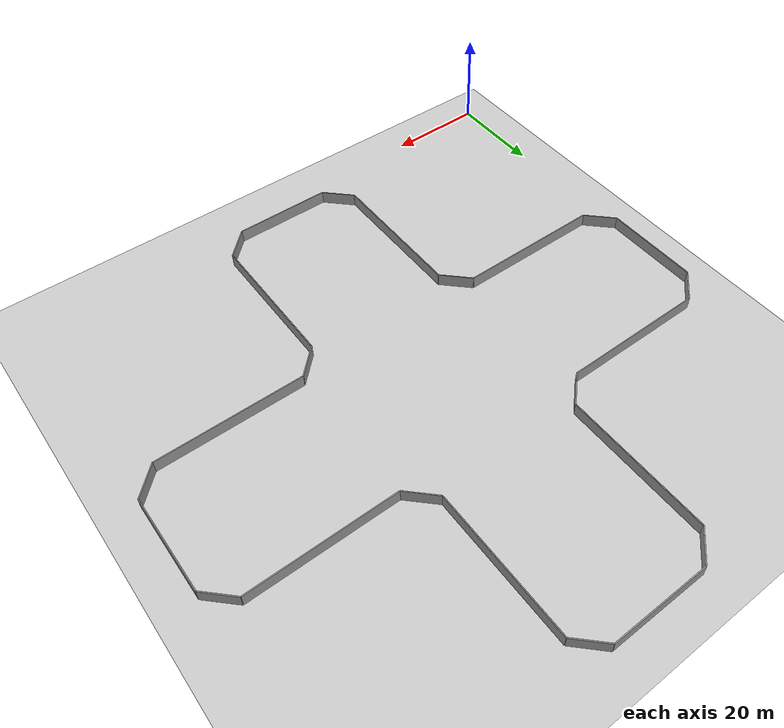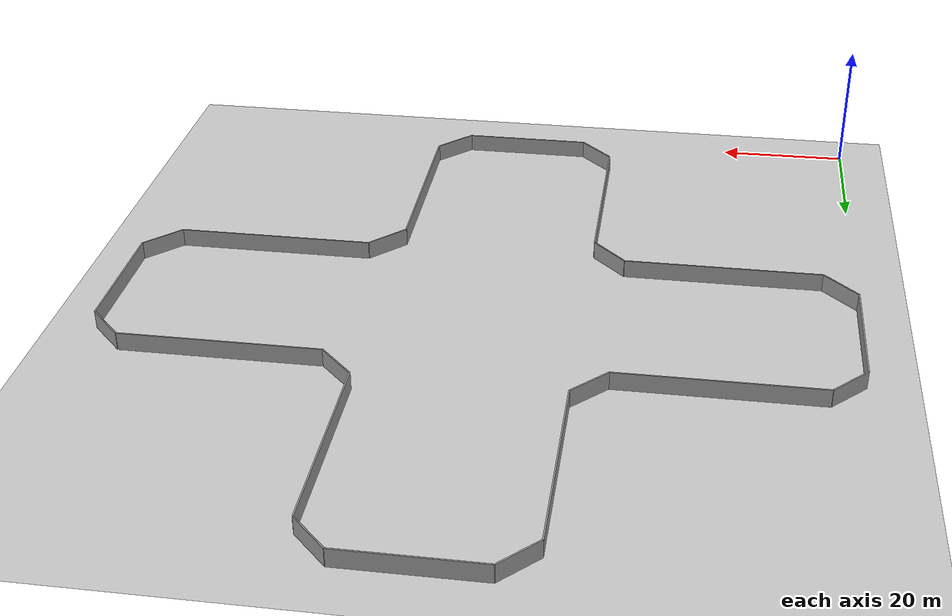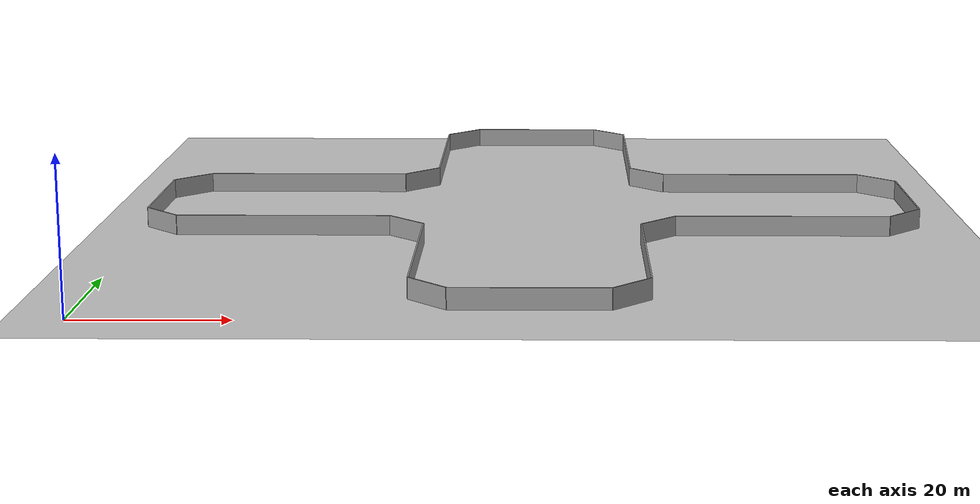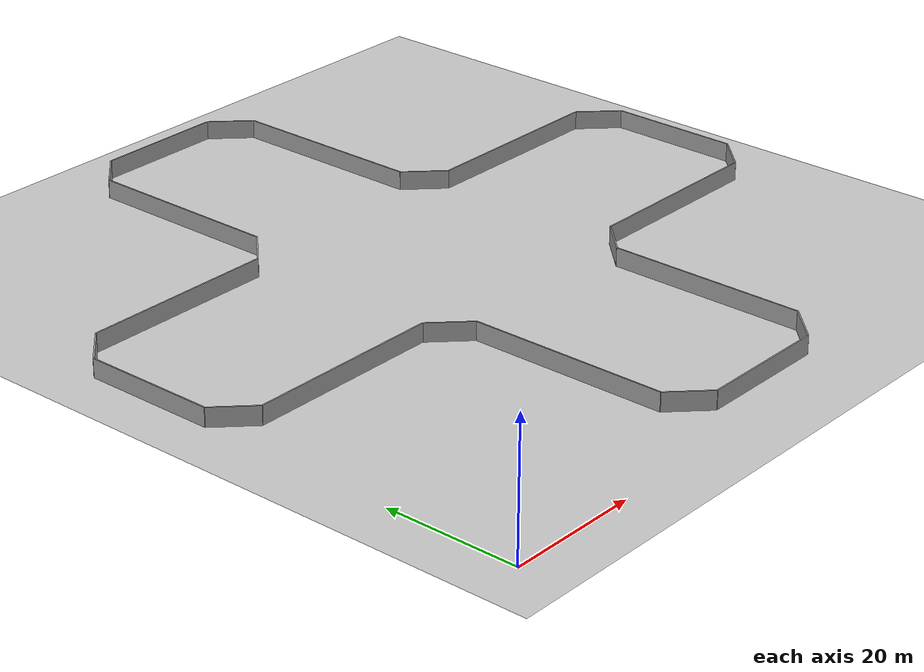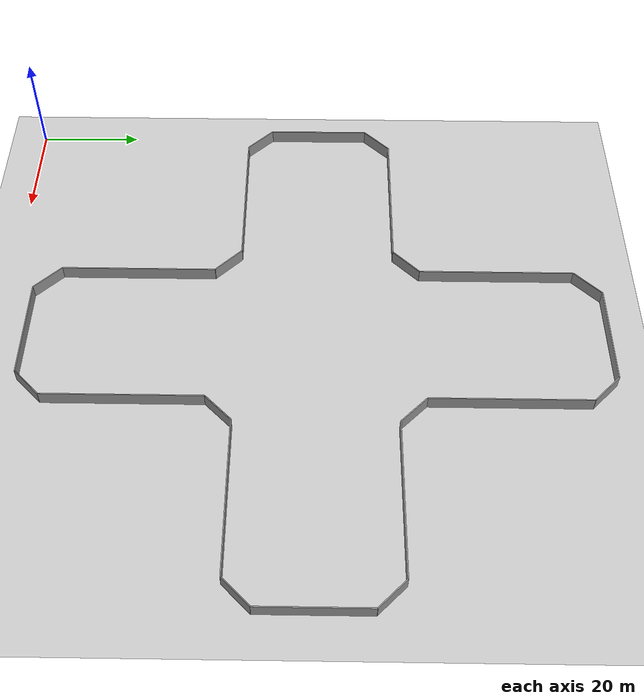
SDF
<?xml version="1.0" ?>

    <!-- this file is auto generated using pedsim_gazebo_plugin pkg -->
    <sdf version="1.5">
      <world name="default">

      <!-- Ground Plane -->

      <include>
        <uri>model://ground_plane</uri>
      </include>

      <include>
        <uri>model://sun</uri>
      </include>

     <model name='grey_wall_1'>
      <static>1</static>
      <link name='link'>

	  <pose frame=''>2.5 47.5  1.4 0 0 -0.785398163397</pose>

        <collision name='collision'>
          <geometry>
            <box>

	     <size> 7.07106781187 .2  2.8 </size>

      	   </box>
          </geometry>
          <max_contacts>10</max_contacts>
          <surface>
            <contact>
              <ode/>
            </contact>
            <bounce/>
            <friction>
              <torsional>
                <ode/>
              </torsional>
              <ode/>
            </friction>
          </surface>
        </collision>
        <visual name='visual'>
          <cast_shadows>0</cast_shadows>
          <geometry>
            <box>

	     <size> 7.07106781187 .2  2.8 </size>

      	   </box>
       </geometry>
          <material>
            <script>
              <uri>model://grey_wall/materials/scripts</uri>
              <uri>model://grey_wall/materials/textures</uri>
              <name>vrc/grey_wall</name>
            </script>
          </material>
        </visual>
        <self_collide>0</self_collide>
        <enable_wind>0</enable_wind>
        <kinematic>0</kinematic>
      </link>
    </model>

     <model name='grey_wall_2'>
      <static>1</static>
      <link name='link'>

	  <pose frame=''>20.0 45.0  1.4 0 0 0.0</pose>

        <collision name='collision'>
          <geometry>
            <box>

	     <size> 30.0 .2  2.8 </size>

      	   </box>
          </geometry>
          <max_contacts>10</max_contacts>
          <surface>
            <contact>
              <ode/>
            </contact>
            <bounce/>
            <friction>
              <torsional>
                <ode/>
              </torsional>
              <ode/>
            </friction>
          </surface>
        </collision>
        <visual name='visual'>
          <cast_shadows>0</cast_shadows>
          <geometry>
            <box>

	     <size> 30.0 .2  2.8 </size>

      	   </box>
       </geometry>
          <material>
            <script>
              <uri>model://grey_wall/materials/scripts</uri>
              <uri>model://grey_wall/materials/textures</uri>
              <name>vrc/grey_wall</name>
            </script>
          </material>
        </visual>
        <self_collide>0</self_collide>
        <enable_wind>0</enable_wind>
        <kinematic>0</kinematic>
      </link>
    </model>

     <model name='grey_wall_3'>
      <static>1</static>
      <link name='link'>

	  <pose frame=''>37.5 42.5  1.4 0 0 -0.785398163397</pose>

        <collision name='collision'>
          <geometry>
            <box>

	     <size> 7.07106781187 .2  2.8 </size>

      	   </box>
          </geometry>
          <max_contacts>10</max_contacts>
          <surface>
            <contact>
              <ode/>
            </contact>
            <bounce/>
            <friction>
              <torsional>
                <ode/>
              </torsional>
              <ode/>
            </friction>
          </surface>
        </collision>
        <visual name='visual'>
          <cast_shadows>0</cast_shadows>
          <geometry>
            <box>

	     <size> 7.07106781187 .2  2.8 </size>

      	   </box>
       </geometry>
          <material>
            <script>
              <uri>model://grey_wall/materials/scripts</uri>
              <uri>model://grey_wall/materials/textures</uri>
              <name>vrc/grey_wall</name>
            </script>
          </material>
        </visual>
        <self_collide>0</self_collide>
        <enable_wind>0</enable_wind>
        <kinematic>0</kinematic>
      </link>
    </model>

     <model name='grey_wall_4'>
      <static>1</static>
      <link name='link'>

	  <pose frame=''>40.0 25.0  1.4 0 0 1.57</pose>

        <collision name='collision'>
          <geometry>
            <box>

	     <size> 30.0 .2  2.8 </size>

      	   </box>
          </geometry>
          <max_contacts>10</max_contacts>
          <surface>
            <contact>
              <ode/>
            </contact>
            <bounce/>
            <friction>
              <torsional>
                <ode/>
              </torsional>
              <ode/>
            </friction>
          </surface>
        </collision>
        <visual name='visual'>
          <cast_shadows>0</cast_shadows>
          <geometry>
            <box>

	     <size> 30.0 .2  2.8 </size>

      	   </box>
       </geometry>
          <material>
            <script>
              <uri>model://grey_wall/materials/scripts</uri>
              <uri>model://grey_wall/materials/textures</uri>
              <name>vrc/grey_wall</name>
            </script>
          </material>
        </visual>
        <self_collide>0</self_collide>
        <enable_wind>0</enable_wind>
        <kinematic>0</kinematic>
      </link>
    </model>

     <model name='grey_wall_5'>
      <static>1</static>
      <link name='link'>

	  <pose frame=''>42.5 7.5  1.4 0 0 -0.785398163397</pose>

        <collision name='collision'>
          <geometry>
            <box>

	     <size> 7.07106781187 .2  2.8 </size>

      	   </box>
          </geometry>
          <max_contacts>10</max_contacts>
          <surface>
            <contact>
              <ode/>
            </contact>
            <bounce/>
            <friction>
              <torsional>
                <ode/>
              </torsional>
              <ode/>
            </friction>
          </surface>
        </collision>
        <visual name='visual'>
          <cast_shadows>0</cast_shadows>
          <geometry>
            <box>

	     <size> 7.07106781187 .2  2.8 </size>

      	   </box>
       </geometry>
          <material>
            <script>
              <uri>model://grey_wall/materials/scripts</uri>
              <uri>model://grey_wall/materials/textures</uri>
              <name>vrc/grey_wall</name>
            </script>
          </material>
        </visual>
        <self_collide>0</self_collide>
        <enable_wind>0</enable_wind>
        <kinematic>0</kinematic>
      </link>
    </model>

     <model name='grey_wall_6'>
      <static>1</static>
      <link name='link'>

	  <pose frame=''>55.0 5.0  1.4 0 0 0.0</pose>

        <collision name='collision'>
          <geometry>
            <box>

	     <size> 20.0 .2  2.8 </size>

      	   </box>
          </geometry>
          <max_contacts>10</max_contacts>
          <surface>
            <contact>
              <ode/>
            </contact>
            <bounce/>
            <friction>
              <torsional>
                <ode/>
              </torsional>
              <ode/>
            </friction>
          </surface>
        </collision>
        <visual name='visual'>
          <cast_shadows>0</cast_shadows>
          <geometry>
            <box>

	     <size> 20.0 .2  2.8 </size>

      	   </box>
       </geometry>
          <material>
            <script>
              <uri>model://grey_wall/materials/scripts</uri>
              <uri>model://grey_wall/materials/textures</uri>
              <name>vrc/grey_wall</name>
            </script>
          </material>
        </visual>
        <self_collide>0</self_collide>
        <enable_wind>0</enable_wind>
        <kinematic>0</kinematic>
      </link>
    </model>

     <model name='grey_wall_7'>
      <static>1</static>
      <link name='link'>

	  <pose frame=''>67.5 7.5  1.4 0 0 0.785398163397</pose>

        <collision name='collision'>
          <geometry>
            <box>

	     <size> 7.07106781187 .2  2.8 </size>

      	   </box>
          </geometry>
          <max_contacts>10</max_contacts>
          <surface>
            <contact>
              <ode/>
            </contact>
            <bounce/>
            <friction>
              <torsional>
                <ode/>
              </torsional>
              <ode/>
            </friction>
          </surface>
        </collision>
        <visual name='visual'>
          <cast_shadows>0</cast_shadows>
          <geometry>
            <box>

	     <size> 7.07106781187 .2  2.8 </size>

      	   </box>
       </geometry>
          <material>
            <script>
              <uri>model://grey_wall/materials/scripts</uri>
              <uri>model://grey_wall/materials/textures</uri>
              <name>vrc/grey_wall</name>
            </script>
          </material>
        </visual>
        <self_collide>0</self_collide>
        <enable_wind>0</enable_wind>
        <kinematic>0</kinematic>
      </link>
    </model>

     <model name='grey_wall_8'>
      <static>1</static>
      <link name='link'>

	  <pose frame=''>70.0 25.0  1.4 0 0 1.57</pose>

        <collision name='collision'>
          <geometry>
            <box>

	     <size> 30.0 .2  2.8 </size>

      	   </box>
          </geometry>
          <max_contacts>10</max_contacts>
          <surface>
            <contact>
              <ode/>
            </contact>
            <bounce/>
            <friction>
              <torsional>
                <ode/>
              </torsional>
              <ode/>
            </friction>
          </surface>
        </collision>
        <visual name='visual'>
          <cast_shadows>0</cast_shadows>
          <geometry>
            <box>

	     <size> 30.0 .2  2.8 </size>

      	   </box>
       </geometry>
          <material>
            <script>
              <uri>model://grey_wall/materials/scripts</uri>
              <uri>model://grey_wall/materials/textures</uri>
              <name>vrc/grey_wall</name>
            </script>
          </material>
        </visual>
        <self_collide>0</self_collide>
        <enable_wind>0</enable_wind>
        <kinematic>0</kinematic>
      </link>
    </model>

     <model name='grey_wall_9'>
      <static>1</static>
      <link name='link'>

	  <pose frame=''>72.5 42.5  1.4 0 0 0.785398163397</pose>

        <collision name='collision'>
          <geometry>
            <box>

	     <size> 7.07106781187 .2  2.8 </size>

      	   </box>
          </geometry>
          <max_contacts>10</max_contacts>
          <surface>
            <contact>
              <ode/>
            </contact>
            <bounce/>
            <friction>
              <torsional>
                <ode/>
              </torsional>
              <ode/>
            </friction>
          </surface>
        </collision>
        <visual name='visual'>
          <cast_shadows>0</cast_shadows>
          <geometry>
            <box>

	     <size> 7.07106781187 .2  2.8 </size>

      	   </box>
       </geometry>
          <material>
            <script>
              <uri>model://grey_wall/materials/scripts</uri>
              <uri>model://grey_wall/materials/textures</uri>
              <name>vrc/grey_wall</name>
            </script>
          </material>
        </visual>
        <self_collide>0</self_collide>
        <enable_wind>0</enable_wind>
        <kinematic>0</kinematic>
      </link>
    </model>

     <model name='grey_wall_10'>
      <static>1</static>
      <link name='link'>

	  <pose frame=''>90.0 45.0  1.4 0 0 0.0</pose>

        <collision name='collision'>
          <geometry>
            <box>

	     <size> 30.0 .2  2.8 </size>

      	   </box>
          </geometry>
          <max_contacts>10</max_contacts>
          <surface>
            <contact>
              <ode/>
            </contact>
            <bounce/>
            <friction>
              <torsional>
                <ode/>
              </torsional>
              <ode/>
            </friction>
          </surface>
        </collision>
        <visual name='visual'>
          <cast_shadows>0</cast_shadows>
          <geometry>
            <box>

	     <size> 30.0 .2  2.8 </size>

      	   </box>
       </geometry>
          <material>
            <script>
              <uri>model://grey_wall/materials/scripts</uri>
              <uri>model://grey_wall/materials/textures</uri>
              <name>vrc/grey_wall</name>
            </script>
          </material>
        </visual>
        <self_collide>0</self_collide>
        <enable_wind>0</enable_wind>
        <kinematic>0</kinematic>
      </link>
    </model>

     <model name='grey_wall_11'>
      <static>1</static>
      <link name='link'>

	  <pose frame=''>107.5 47.5  1.4 0 0 0.785398163397</pose>

        <collision name='collision'>
          <geometry>
            <box>

	     <size> 7.07106781187 .2  2.8 </size>

      	   </box>
          </geometry>
          <max_contacts>10</max_contacts>
          <surface>
            <contact>
              <ode/>
            </contact>
            <bounce/>
            <friction>
              <torsional>
                <ode/>
              </torsional>
              <ode/>
            </friction>
          </surface>
        </collision>
        <visual name='visual'>
          <cast_shadows>0</cast_shadows>
          <geometry>
            <box>

	     <size> 7.07106781187 .2  2.8 </size>

      	   </box>
       </geometry>
          <material>
            <script>
              <uri>model://grey_wall/materials/scripts</uri>
              <uri>model://grey_wall/materials/textures</uri>
              <name>vrc/grey_wall</name>
            </script>
          </material>
        </visual>
        <self_collide>0</self_collide>
        <enable_wind>0</enable_wind>
        <kinematic>0</kinematic>
      </link>
    </model>

     <model name='grey_wall_12'>
      <static>1</static>
      <link name='link'>

	  <pose frame=''>110.0 60.0  1.4 0 0 1.57</pose>

        <collision name='collision'>
          <geometry>
            <box>

	     <size> 20.0 .2  2.8 </size>

      	   </box>
          </geometry>
          <max_contacts>10</max_contacts>
          <surface>
            <contact>
              <ode/>
            </contact>
            <bounce/>
            <friction>
              <torsional>
                <ode/>
              </torsional>
              <ode/>
            </friction>
          </surface>
        </collision>
        <visual name='visual'>
          <cast_shadows>0</cast_shadows>
          <geometry>
            <box>

	     <size> 20.0 .2  2.8 </size>

      	   </box>
       </geometry>
          <material>
            <script>
              <uri>model://grey_wall/materials/scripts</uri>
              <uri>model://grey_wall/materials/textures</uri>
              <name>vrc/grey_wall</name>
            </script>
          </material>
        </visual>
        <self_collide>0</self_collide>
        <enable_wind>0</enable_wind>
        <kinematic>0</kinematic>
      </link>
    </model>

     <model name='grey_wall_13'>
      <static>1</static>
      <link name='link'>

	  <pose frame=''>107.5 72.5  1.4 0 0 -0.785398163397</pose>

        <collision name='collision'>
          <geometry>
            <box>

	     <size> 7.07106781187 .2  2.8 </size>

      	   </box>
          </geometry>
          <max_contacts>10</max_contacts>
          <surface>
            <contact>
              <ode/>
            </contact>
            <bounce/>
            <friction>
              <torsional>
                <ode/>
              </torsional>
              <ode/>
            </friction>
          </surface>
        </collision>
        <visual name='visual'>
          <cast_shadows>0</cast_shadows>
          <geometry>
            <box>

	     <size> 7.07106781187 .2  2.8 </size>

      	   </box>
       </geometry>
          <material>
            <script>
              <uri>model://grey_wall/materials/scripts</uri>
              <uri>model://grey_wall/materials/textures</uri>
              <name>vrc/grey_wall</name>
            </script>
          </material>
        </visual>
        <self_collide>0</self_collide>
        <enable_wind>0</enable_wind>
        <kinematic>0</kinematic>
      </link>
    </model>

     <model name='grey_wall_14'>
      <static>1</static>
      <link name='link'>

	  <pose frame=''>90.0 75.0  1.4 0 0 -0.0</pose>

        <collision name='collision'>
          <geometry>
            <box>

	     <size> 30.0 .2  2.8 </size>

      	   </box>
          </geometry>
          <max_contacts>10</max_contacts>
          <surface>
            <contact>
              <ode/>
            </contact>
            <bounce/>
            <friction>
              <torsional>
                <ode/>
              </torsional>
              <ode/>
            </friction>
          </surface>
        </collision>
        <visual name='visual'>
          <cast_shadows>0</cast_shadows>
          <geometry>
            <box>

	     <size> 30.0 .2  2.8 </size>

      	   </box>
       </geometry>
          <material>
            <script>
              <uri>model://grey_wall/materials/scripts</uri>
              <uri>model://grey_wall/materials/textures</uri>
              <name>vrc/grey_wall</name>
            </script>
          </material>
        </visual>
        <self_collide>0</self_collide>
        <enable_wind>0</enable_wind>
        <kinematic>0</kinematic>
      </link>
    </model>

     <model name='grey_wall_15'>
      <static>1</static>
      <link name='link'>

	  <pose frame=''>72.5 77.5  1.4 0 0 -0.785398163397</pose>

        <collision name='collision'>
          <geometry>
            <box>

	     <size> 7.07106781187 .2  2.8 </size>

      	   </box>
          </geometry>
          <max_contacts>10</max_contacts>
          <surface>
            <contact>
              <ode/>
            </contact>
            <bounce/>
            <friction>
              <torsional>
                <ode/>
              </torsional>
              <ode/>
            </friction>
          </surface>
        </collision>
        <visual name='visual'>
          <cast_shadows>0</cast_shadows>
          <geometry>
            <box>

	     <size> 7.07106781187 .2  2.8 </size>

      	   </box>
       </geometry>
          <material>
            <script>
              <uri>model://grey_wall/materials/scripts</uri>
              <uri>model://grey_wall/materials/textures</uri>
              <name>vrc/grey_wall</name>
            </script>
          </material>
        </visual>
        <self_collide>0</self_collide>
        <enable_wind>0</enable_wind>
        <kinematic>0</kinematic>
      </link>
    </model>

     <model name='grey_wall_16'>
      <static>1</static>
      <link name='link'>

	  <pose frame=''>70.0 95.0  1.4 0 0 1.57</pose>

        <collision name='collision'>
          <geometry>
            <box>

	     <size> 30.0 .2  2.8 </size>

      	   </box>
          </geometry>
          <max_contacts>10</max_contacts>
          <surface>
            <contact>
              <ode/>
            </contact>
            <bounce/>
            <friction>
              <torsional>
                <ode/>
              </torsional>
              <ode/>
            </friction>
          </surface>
        </collision>
        <visual name='visual'>
          <cast_shadows>0</cast_shadows>
          <geometry>
            <box>

	     <size> 30.0 .2  2.8 </size>

      	   </box>
       </geometry>
          <material>
            <script>
              <uri>model://grey_wall/materials/scripts</uri>
              <uri>model://grey_wall/materials/textures</uri>
              <name>vrc/grey_wall</name>
            </script>
          </material>
        </visual>
        <self_collide>0</self_collide>
        <enable_wind>0</enable_wind>
        <kinematic>0</kinematic>
      </link>
    </model>

     <model name='grey_wall_17'>
      <static>1</static>
      <link name='link'>

	  <pose frame=''>67.5 112.5  1.4 0 0 -0.785398163397</pose>

        <collision name='collision'>
          <geometry>
            <box>

	     <size> 7.07106781187 .2  2.8 </size>

      	   </box>
          </geometry>
          <max_contacts>10</max_contacts>
          <surface>
            <contact>
              <ode/>
            </contact>
            <bounce/>
            <friction>
              <torsional>
                <ode/>
              </torsional>
              <ode/>
            </friction>
          </surface>
        </collision>
        <visual name='visual'>
          <cast_shadows>0</cast_shadows>
          <geometry>
            <box>

	     <size> 7.07106781187 .2  2.8 </size>

      	   </box>
       </geometry>
          <material>
            <script>
              <uri>model://grey_wall/materials/scripts</uri>
              <uri>model://grey_wall/materials/textures</uri>
              <name>vrc/grey_wall</name>
            </script>
          </material>
        </visual>
        <self_collide>0</self_collide>
        <enable_wind>0</enable_wind>
        <kinematic>0</kinematic>
      </link>
    </model>

     <model name='grey_wall_18'>
      <static>1</static>
      <link name='link'>

	  <pose frame=''>55.0 115.0  1.4 0 0 -0.0</pose>

        <collision name='collision'>
          <geometry>
            <box>

	     <size> 20.0 .2  2.8 </size>

      	   </box>
          </geometry>
          <max_contacts>10</max_contacts>
          <surface>
            <contact>
              <ode/>
            </contact>
            <bounce/>
            <friction>
              <torsional>
                <ode/>
              </torsional>
              <ode/>
            </friction>
          </surface>
        </collision>
        <visual name='visual'>
          <cast_shadows>0</cast_shadows>
          <geometry>
            <box>

	     <size> 20.0 .2  2.8 </size>

      	   </box>
       </geometry>
          <material>
            <script>
              <uri>model://grey_wall/materials/scripts</uri>
              <uri>model://grey_wall/materials/textures</uri>
              <name>vrc/grey_wall</name>
            </script>
          </material>
        </visual>
        <self_collide>0</self_collide>
        <enable_wind>0</enable_wind>
        <kinematic>0</kinematic>
      </link>
    </model>

     <model name='grey_wall_19'>
      <static>1</static>
      <link name='link'>

	  <pose frame=''>42.5 112.5  1.4 0 0 0.785398163397</pose>

        <collision name='collision'>
          <geometry>
            <box>

	     <size> 7.07106781187 .2  2.8 </size>

      	   </box>
          </geometry>
          <max_contacts>10</max_contacts>
          <surface>
            <contact>
              <ode/>
            </contact>
            <bounce/>
            <friction>
              <torsional>
                <ode/>
              </torsional>
              <ode/>
            </friction>
          </surface>
        </collision>
        <visual name='visual'>
          <cast_shadows>0</cast_shadows>
          <geometry>
            <box>

	     <size> 7.07106781187 .2  2.8 </size>

      	   </box>
       </geometry>
          <material>
            <script>
              <uri>model://grey_wall/materials/scripts</uri>
              <uri>model://grey_wall/materials/textures</uri>
              <name>vrc/grey_wall</name>
            </script>
          </material>
        </visual>
        <self_collide>0</self_collide>
        <enable_wind>0</enable_wind>
        <kinematic>0</kinematic>
      </link>
    </model>

     <model name='grey_wall_20'>
      <static>1</static>
      <link name='link'>

	  <pose frame=''>40.0 95.0  1.4 0 0 1.57</pose>

        <collision name='collision'>
          <geometry>
            <box>

	     <size> 30.0 .2  2.8 </size>

      	   </box>
          </geometry>
          <max_contacts>10</max_contacts>
          <surface>
            <contact>
              <ode/>
            </contact>
            <bounce/>
            <friction>
              <torsional>
                <ode/>
              </torsional>
              <ode/>
            </friction>
          </surface>
        </collision>
        <visual name='visual'>
          <cast_shadows>0</cast_shadows>
          <geometry>
            <box>

	     <size> 30.0 .2  2.8 </size>

      	   </box>
       </geometry>
          <material>
            <script>
              <uri>model://grey_wall/materials/scripts</uri>
              <uri>model://grey_wall/materials/textures</uri>
              <name>vrc/grey_wall</name>
            </script>
          </material>
        </visual>
        <self_collide>0</self_collide>
        <enable_wind>0</enable_wind>
        <kinematic>0</kinematic>
      </link>
    </model>

     <model name='grey_wall_21'>
      <static>1</static>
      <link name='link'>

	  <pose frame=''>37.5 77.5  1.4 0 0 0.785398163397</pose>

        <collision name='collision'>
          <geometry>
            <box>

	     <size> 7.07106781187 .2  2.8 </size>

      	   </box>
          </geometry>
          <max_contacts>10</max_contacts>
          <surface>
            <contact>
              <ode/>
            </contact>
            <bounce/>
            <friction>
              <torsional>
                <ode/>
              </torsional>
              <ode/>
            </friction>
          </surface>
        </collision>
        <visual name='visual'>
          <cast_shadows>0</cast_shadows>
          <geometry>
            <box>

	     <size> 7.07106781187 .2  2.8 </size>

      	   </box>
       </geometry>
          <material>
            <script>
              <uri>model://grey_wall/materials/scripts</uri>
              <uri>model://grey_wall/materials/textures</uri>
              <name>vrc/grey_wall</name>
            </script>
          </material>
        </visual>
        <self_collide>0</self_collide>
        <enable_wind>0</enable_wind>
        <kinematic>0</kinematic>
      </link>
    </model>

     <model name='grey_wall_22'>
      <static>1</static>
      <link name='link'>

	  <pose frame=''>20.0 75.0  1.4 0 0 -0.0</pose>

        <collision name='collision'>
          <geometry>
            <box>

	     <size> 30.0 .2  2.8 </size>

      	   </box>
          </geometry>
          <max_contacts>10</max_contacts>
          <surface>
            <contact>
              <ode/>
            </contact>
            <bounce/>
            <friction>
              <torsional>
                <ode/>
              </torsional>
              <ode/>
            </friction>
          </surface>
        </collision>
        <visual name='visual'>
          <cast_shadows>0</cast_shadows>
          <geometry>
            <box>

	     <size> 30.0 .2  2.8 </size>

      	   </box>
       </geometry>
          <material>
            <script>
              <uri>model://grey_wall/materials/scripts</uri>
              <uri>model://grey_wall/materials/textures</uri>
              <name>vrc/grey_wall</name>
            </script>
          </material>
        </visual>
        <self_collide>0</self_collide>
        <enable_wind>0</enable_wind>
        <kinematic>0</kinematic>
      </link>
    </model>

     <model name='grey_wall_23'>
      <static>1</static>
      <link name='link'>

	  <pose frame=''>2.5 72.5  1.4 0 0 0.785398163397</pose>

        <collision name='collision'>
          <geometry>
            <box>

	     <size> 7.07106781187 .2  2.8 </size>

      	   </box>
          </geometry>
          <max_contacts>10</max_contacts>
          <surface>
            <contact>
              <ode/>
            </contact>
            <bounce/>
            <friction>
              <torsional>
                <ode/>
              </torsional>
              <ode/>
            </friction>
          </surface>
        </collision>
        <visual name='visual'>
          <cast_shadows>0</cast_shadows>
          <geometry>
            <box>

	     <size> 7.07106781187 .2  2.8 </size>

      	   </box>
       </geometry>
          <material>
            <script>
              <uri>model://grey_wall/materials/scripts</uri>
              <uri>model://grey_wall/materials/textures</uri>
              <name>vrc/grey_wall</name>
            </script>
          </material>
        </visual>
        <self_collide>0</self_collide>
        <enable_wind>0</enable_wind>
        <kinematic>0</kinematic>
      </link>
    </model>

     <model name='grey_wall_24'>
      <static>1</static>
      <link name='link'>

	  <pose frame=''>0.0 60.0  1.4 0 0 1.57</pose>

        <collision name='collision'>
          <geometry>
            <box>

	     <size> 20.0 .2  2.8 </size>

      	   </box>
          </geometry>
          <max_contacts>10</max_contacts>
          <surface>
            <contact>
              <ode/>
            </contact>
            <bounce/>
            <friction>
              <torsional>
                <ode/>
              </torsional>
              <ode/>
            </friction>
          </surface>
        </collision>
        <visual name='visual'>
          <cast_shadows>0</cast_shadows>
          <geometry>
            <box>

	     <size> 20.0 .2  2.8 </size>

      	   </box>
       </geometry>
          <material>
            <script>
              <uri>model://grey_wall/materials/scripts</uri>
              <uri>model://grey_wall/materials/textures</uri>
              <name>vrc/grey_wall</name>
            </script>
          </material>
        </visual>
        <self_collide>0</self_collide>
        <enable_wind>0</enable_wind>
        <kinematic>0</kinematic>
      </link>
    </model>

            <plugin name="ActorPosesPlugin" filename="libActorPosesPlugin.dylib">
        </plugin>

      </world>
    </sdf>
